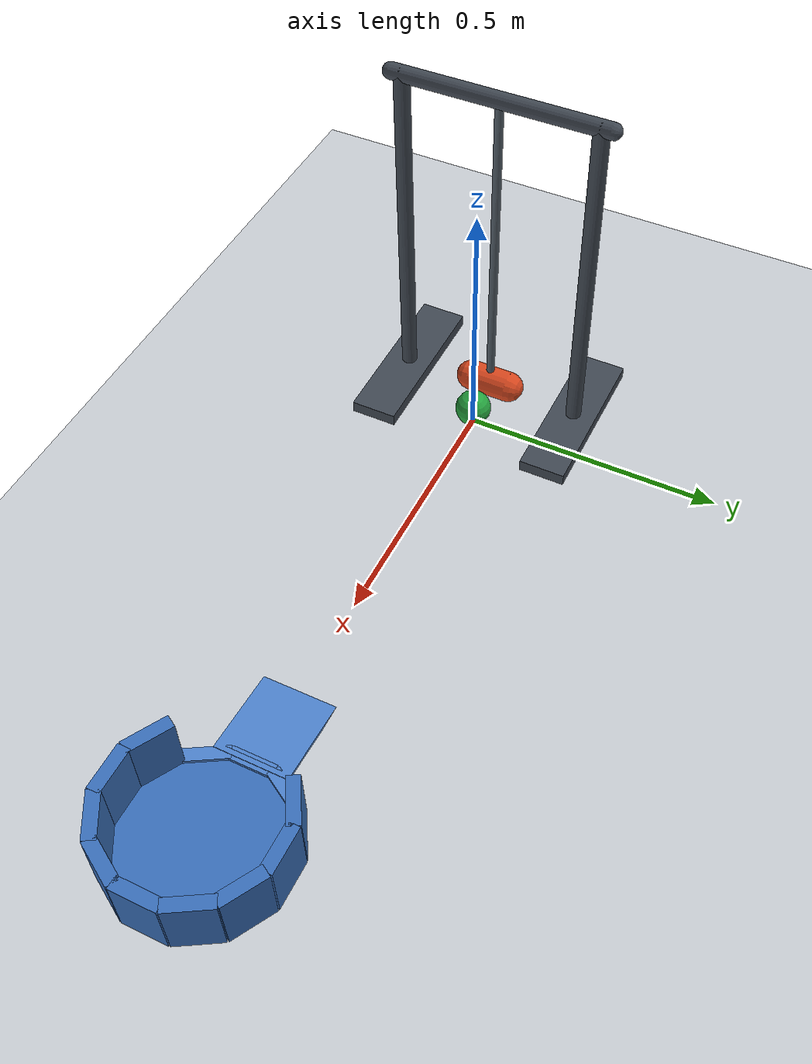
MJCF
<mujoco model="pendulum_putt">
  <compiler angle="radian" inertiafromgeom="true"/>
  <option timestep="0.002" gravity="0 0 -9.81" integrator="implicitfast" cone="elliptic" iterations="80"/>
  <size njmax="2000" nconmax="300"/>
  <visual>
    <global offwidth="1280" offheight="720"/>
    <headlight ambient="0.35 0.35 0.35" diffuse="0.65 0.65 0.65"/>
  </visual>

  <worldbody>
    <light name="overhead" pos="0.5 -1 3" dir="0 0 -1" diffuse="0.8 0.8 0.8"/>
    <camera name="overview" pos="0.45 -2.3 1.25" xyaxes="1 0 0 0 0.46 0.888"/>

    <geom name="floor" type="plane" size="3 2 0.1" rgba="0.78 0.80 0.82 1" condim="6" friction="0.2 0.001 0.0001" solref="0.004 1" solimp="0.95 0.99 0.001"/>

    <body name="stand" pos="-0.08 0 0">
      <geom name="stand_left" type="capsule" fromto="0 -0.18 0.015 0 -0.18 0.687" size="0.015" rgba="0.25 0.28 0.32 1" contype="0" conaffinity="0"/>
      <geom name="stand_right" type="capsule" fromto="0 0.18 0.015 0 0.18 0.687" size="0.015" rgba="0.25 0.28 0.32 1" contype="0" conaffinity="0"/>
      <geom name="stand_crossbar" type="capsule" fromto="0 -0.20 0.687 0 0.20 0.687" size="0.015" rgba="0.25 0.28 0.32 1" contype="0" conaffinity="0"/>
      <geom name="stand_foot_left" type="box" pos="0 -0.18 0.012" size="0.16 0.045 0.012" rgba="0.25 0.28 0.32 1" contype="0" conaffinity="0"/>
      <geom name="stand_foot_right" type="box" pos="0 0.18 0.012" size="0.16 0.045 0.012" rgba="0.25 0.28 0.32 1" contype="0" conaffinity="0"/>
    </body>

    <body name="pendulum" pos="-0.08 0 0.687">
      <joint name="pendulum_hinge" type="hinge" axis="0 1 0" damping="0.003"/>
      <geom name="pendulum_arm" type="capsule" fromto="0 0 0 0 0 -0.62" size="0.008" mass="0.025" rgba="0.32 0.36 0.40 1" friction="0.2 0.001 0.0001" solref="0.004 1"/>
      <geom name="pendulum_bob" type="capsule" fromto="0 -0.04 -0.65 0 0.04 -0.65" size="0.03" mass="0.3" rgba="0.85 0.28 0.12 1" condim="3" friction="0.2 0.001 0.0001" solref="0.004 1" solimp="0.95 0.99 0.001"/>
    </body>

    <body name="ball" pos="0 0 0.035">
      <freejoint name="ball_free"/>
      <geom name="ball" type="sphere" size="0.035" mass="0.05" rgba="0.15 0.65 0.25 1" condim="6" friction="0.2 0.001 0.0001" solref="0.004 1" solimp="0.95 0.99 0.001"/>
    </body>

    <body name="cup" pos="1 0 0">
      <geom name="cup_bottom" type="cylinder" pos="0 0 0.004" size="0.16 0.004" rgba="0.22 0.43 0.72 1" condim="6" friction="0.8 0.005 0.005" solref="0.004 1" solimp="0.95 0.99 0.001"/>
      <geom name="cup_entry_ramp" type="box" pos="-0.225 0 0.004" quat="0.99875026 0 -0.04997917 0" size="0.08 0.07 0.003" rgba="0.30 0.51 0.80 1" condim="6" friction="0.2 0.001 0.0001" solref="0.004 1" solimp="0.95 0.99 0.001"/>

      <geom name="cup_wall_00" type="box" pos="0.15 0 0.06" size="0.012 0.042 0.06" rgba="0.22 0.43 0.72 1" condim="6" friction="0.8 0.005 0.005" solref="0.004 1"/>
      <geom name="cup_wall_30" type="box" pos="0.1299038 0.075 0.06" quat="0.9659258 0 0 0.2588190" size="0.012 0.042 0.06" rgba="0.22 0.43 0.72 1" condim="6" friction="0.8 0.005 0.005" solref="0.004 1"/>
      <geom name="cup_wall_60" type="box" pos="0.075 0.1299038 0.06" quat="0.8660254 0 0 0.5" size="0.012 0.042 0.06" rgba="0.22 0.43 0.72 1" condim="6" friction="0.8 0.005 0.005" solref="0.004 1"/>
      <geom name="cup_wall_90" type="box" pos="0 0.15 0.06" quat="0.7071068 0 0 0.7071068" size="0.012 0.042 0.06" rgba="0.22 0.43 0.72 1" condim="6" friction="0.8 0.005 0.005" solref="0.004 1"/>
      <geom name="cup_wall_120" type="box" pos="-0.075 0.1299038 0.06" quat="0.5 0 0 0.8660254" size="0.012 0.042 0.06" rgba="0.22 0.43 0.72 1" condim="6" friction="0.8 0.005 0.005" solref="0.004 1"/>

      <geom name="cup_lip_150" type="box" pos="-0.1299038 0.075 0.007" quat="0.2588190 0 0 0.9659258" size="0.012 0.042 0.007" rgba="0.30 0.51 0.80 1" condim="6" friction="0.2 0.001 0.0001" solref="0.004 1"/>
      <geom name="cup_lip_180" type="box" pos="-0.15 0 0.007" quat="0 0 0 1" size="0.012 0.042 0.007" rgba="0.30 0.51 0.80 1" condim="6" friction="0.2 0.001 0.0001" solref="0.004 1"/>
      <geom name="cup_lip_210" type="box" pos="-0.1299038 -0.075 0.007" quat="-0.2588190 0 0 0.9659258" size="0.012 0.042 0.007" rgba="0.30 0.51 0.80 1" condim="6" friction="0.2 0.001 0.0001" solref="0.004 1"/>

      <geom name="cup_wall_240" type="box" pos="-0.075 -0.1299038 0.06" quat="-0.5 0 0 0.8660254" size="0.012 0.042 0.06" rgba="0.22 0.43 0.72 1" condim="6" friction="0.8 0.005 0.005" solref="0.004 1"/>
      <geom name="cup_wall_270" type="box" pos="0 -0.15 0.06" quat="-0.7071068 0 0 0.7071068" size="0.012 0.042 0.06" rgba="0.22 0.43 0.72 1" condim="6" friction="0.8 0.005 0.005" solref="0.004 1"/>
      <geom name="cup_wall_300" type="box" pos="0.075 -0.1299038 0.06" quat="-0.8660254 0 0 0.5" size="0.012 0.042 0.06" rgba="0.22 0.43 0.72 1" condim="6" friction="0.8 0.005 0.005" solref="0.004 1"/>
      <geom name="cup_wall_330" type="box" pos="0.1299038 -0.075 0.06" quat="-0.9659258 0 0 0.2588190" size="0.012 0.042 0.06" rgba="0.22 0.43 0.72 1" condim="6" friction="0.8 0.005 0.005" solref="0.004 1"/>
    </body>
  </worldbody>

  <keyframe>
    <key name="start" qpos="0.44 0 0 0.035 1 0 0 0" qvel="0 0 0 0 0 0 0"/>
  </keyframe>
</mujoco>
